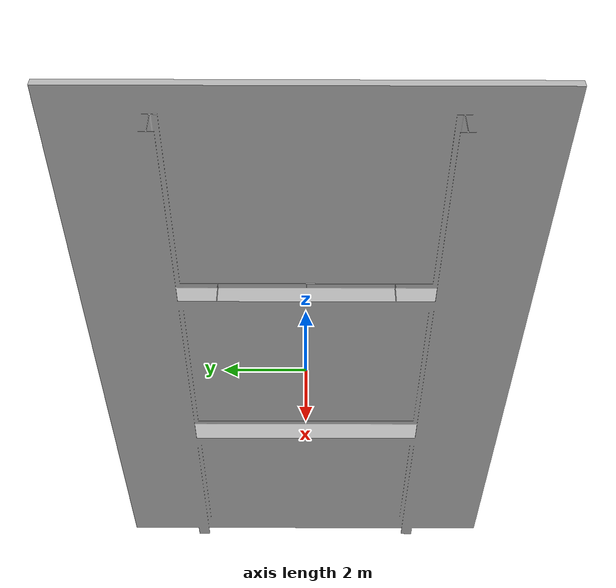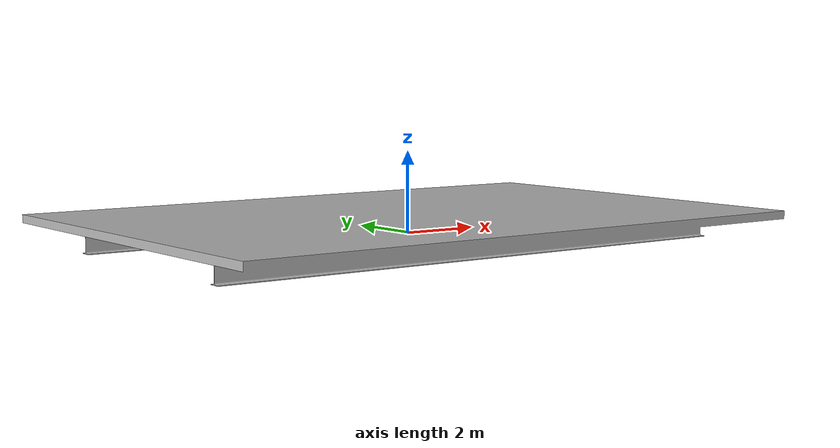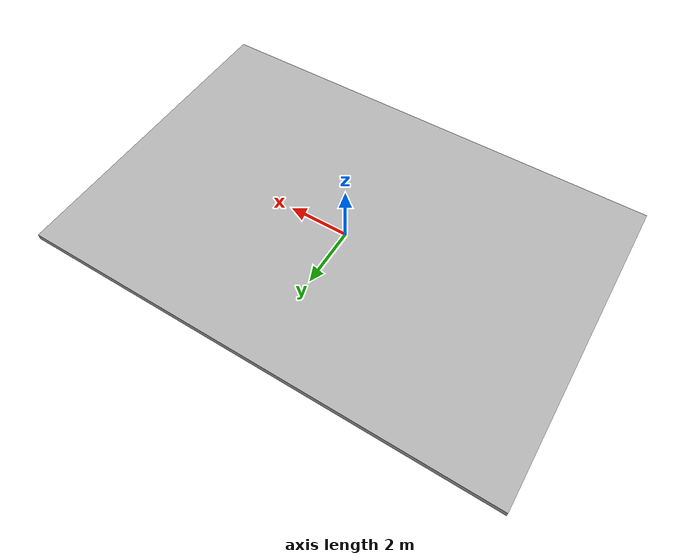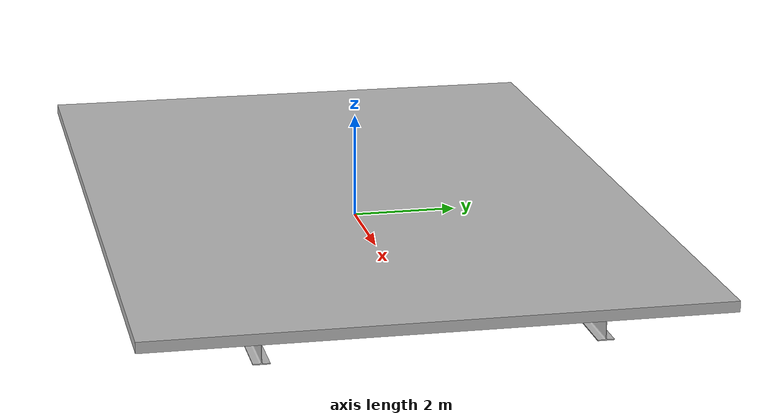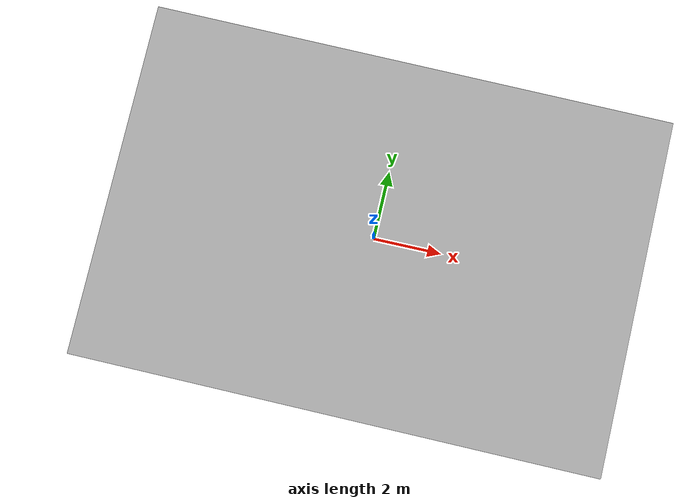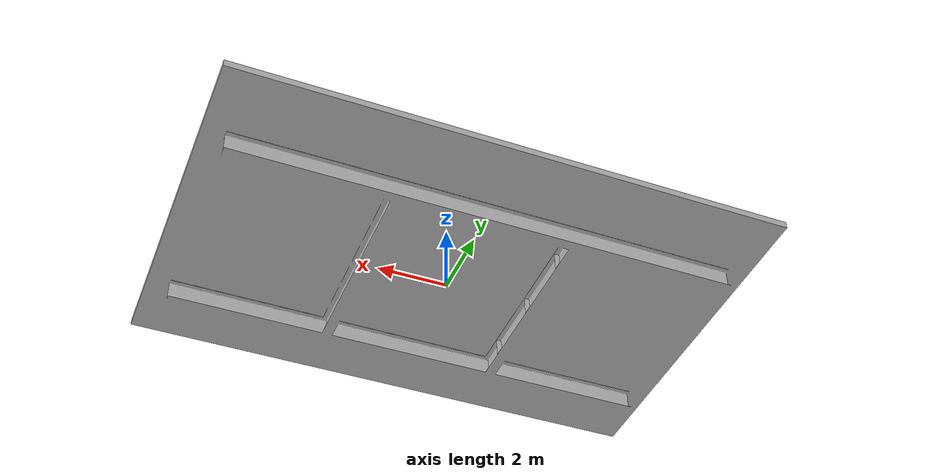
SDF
<?xml version="1.0"?>
<sdf version="1.5">
  <model name="beam">
    <link name="link">
      <gravity>false</gravity>
      <pose>0 0 0 0 0 0</pose>
      <collision name="collision">
        <geometry>
          <mesh>
            <uri>model://beam/beam.STL</uri>
          </mesh>
        </geometry>
      </collision>
      <visual name="visual">
        <geometry>
          <mesh>
            <uri>model://beam/beam.STL</uri>
          </mesh>
        </geometry>
      </visual>
    </link>
  </model>
</sdf>
